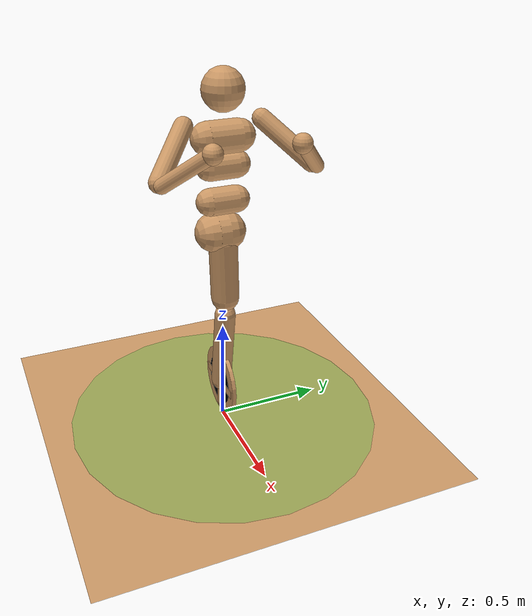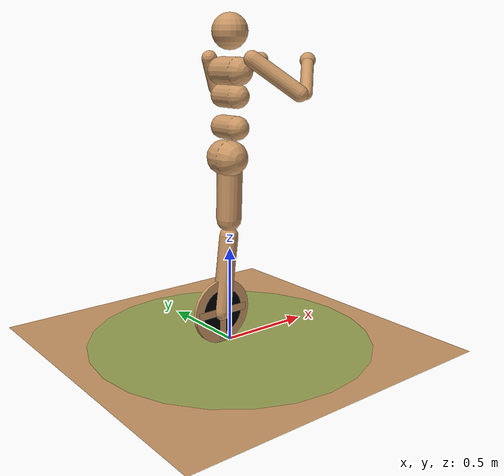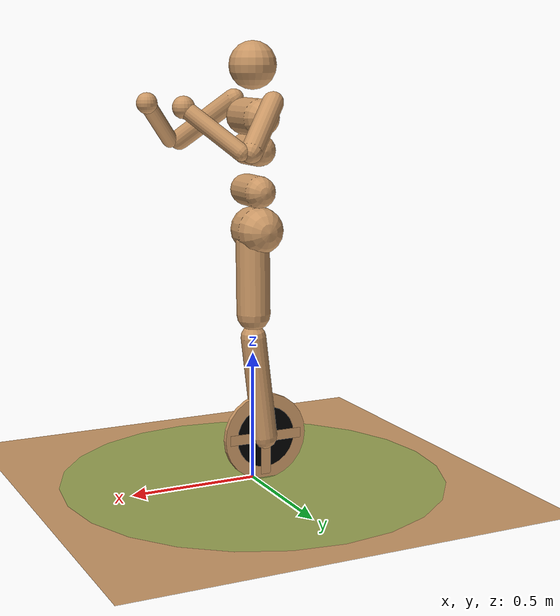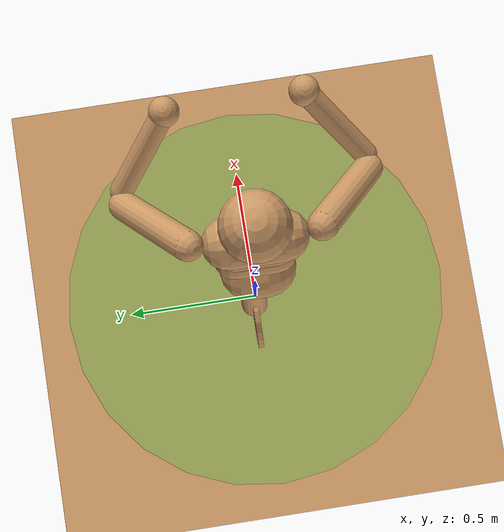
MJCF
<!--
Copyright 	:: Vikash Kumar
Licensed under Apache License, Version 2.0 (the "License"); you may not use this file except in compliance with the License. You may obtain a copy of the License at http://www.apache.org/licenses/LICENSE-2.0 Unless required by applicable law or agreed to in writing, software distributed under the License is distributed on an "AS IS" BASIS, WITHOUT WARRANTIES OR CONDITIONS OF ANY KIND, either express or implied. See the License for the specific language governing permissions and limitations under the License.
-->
<mujoco model='unicycle-v1.5'>

	<compiler inertiafromgeom='true' angle='degree' coordinate='local'/>
	<default>
		<joint limited='true' damping='1' armature='0' />
		<geom contype='1' condim='1' conaffinity='1' friction='.7 .01 .002' rgba='0.8 0.6 .4 1' margin='0.02' material="geom"/>
		<motor ctrlrange='-.3 .3'  ctrllimited='true'/>
	</default>

	<option timestep='0.002'/>

 	<visual>
        <map fogstart="3" fogend="5" force="0.1" znear="0.5"/>
        <quality shadowsize="2048" offsamples="8"/>
        <global offwidth="800" offheight="800"/>
    </visual>

    <asset>
        <texture name="skybox" type="skybox" builtin="gradient" rgb1=".08 .09 .10" rgb2="0 0 0"
               width="800" height="800" mark="random" markrgb=".8 .8 .8"/>
        <texture name="texgeom" type="cube" builtin="flat" mark="cross" width="127" height="1278"
            rgb1="0.8 0.6 0.4" rgb2="0.8 0.6 0.4" markrgb="1 1 1" random="0.01"/>
        <texture name="texplane" type="2d" builtin="checker" rgb1=".2 .3 .4" rgb2=".1 0.15 0.2"
            width="512" height="512"/>

        <material name='MatPlane' reflectance='0.3' texture="texplane" texrepeat="1 1" texuniform="true"/>
        <material name='geom' texture="texgeom" texuniform="true"/>
    </asset>

    <worldbody>
        <geom name='floor' pos='0 0 0' size='15 15 .125' type='plane' material="MatPlane" condim='3'/>

        <light mode='targetbodycom' target='torso' directional='false' diffuse='.8 .8 .8' specular='0.3 0.3 0.3' pos='0 0 4.0' dir='0 0 -1'/>

		<camera name='targeting' pos='1 1 2' mode='targetbodycom' target='torso'/>

        <site name='target' pos='0 0 0' size='.75 .001' type='cylinder' rgba='0.2 0.8 0.2 .3' />

		<body name='torso' pos='0 0 1.4'>
			<joint name='root' type='free' pos='0 0 0' limited='false' damping='0' armature='0'/>
			<geom name='torso1' type='capsule' fromto='0 -.07 0 0 .07 0'  size='0.07' />
			<geom name='head' type='sphere' pos='0 0 .19' size='.09' />
			<geom name='uwaist' type='capsule' fromto='0 -.06 -.12 0 .06 -.12'  size='0.06' />
			<body name='pelvis' pos='0 0 -0.425' quat='1.000 0 -0.002 0'>
				<joint name='abdomen_z' type='hinge' pos='0 0 0.22' axis='0 0 1' range='-45 45' damping='4' stiffness='10' armature='0.0069' />
				<joint name='abdomen_x' type='hinge' pos='0 0 0.22' axis='1 0 0' range='-20 20' damping='4' stiffness='5' armature='0.0153' />
				<joint name='abdomen_y' type='hinge' pos='0 0 0.22' axis='0 1 0' range='-60 30' damping='4' stiffness='5' armature='0.0077' />
				<geom name='lwaist' type='capsule' fromto='0 -.06 0.15 0 .06 0.15'  size='0.06' />
				<geom name='butt' type='capsule' fromto='-.02 -.03 0 -.02 .02 0'  size='0.09' />
				<body name='thigh' pos='0 0 -0.04' >
					<joint name='hip2' type='hinge' pos='0 0 0' axis='0 0 1' range='-60 35'  stiffness='10' armature='0.02' damping='4'/>
					<joint name='hip3' type='hinge' pos='0 0 0' axis='0 1 0' range='-110 10' stiffness='20' armature='0.0080' damping='4'/>
					<geom name='thigh1' type='capsule' fromto='0 0 0 0 0.01 -.28'  size='0.065' />
					<body name='shin' pos='0 0.01 -0.37' >
						<joint name='knee' type='hinge' pos='0 0 .05' axis='0 -1 0' range='-160 -2' armature='0.0060' />
						<geom name='shin1' type='capsule' fromto='0 0 0 -.05 0 -.4'   size='0.049' />
						<joint name='yaw' type='hinge' pos='0 0 -.162' axis='0 0 1' range='-50 50' stiffness='1'  armature='0.0006' />
						<body name='wheel' pos='-0.05 0 -.4'>
							<joint name='wheel' type='hinge' pos='0 0 0' axis='0 1 0' limited='false' stiffness='0' armature='0' damping='0.1'/>
							<geom name='r_wheel' type='cylinder' fromto='0 -.01 0    0 0.01 0'  size='0.17' condim='6'/>
							<geom name='r_wheel0' type='cylinder' fromto='0 -.011 0    0 0.011 0'  size='0.12' rgba='0 0 0 1' contype='0' conaffinity='0' density='0'/>
							<geom name='r_decoration1' type='box'   size='0.15 0.012 0.02' contype='0' conaffinity='0' density='0'/>
							<geom name='r_decoration2' type='box'   size='0.02 0.012 0.15' contype='0' conaffinity='0' density='0'/>
						</body>
					</body>
				</body>
			</body>
			<body name='right_upper_arm' pos='0 -0.17 0.06' >
				<joint name='right_shoulder1' type='hinge' pos='0 0 0' axis='0 -1 1' range='-90 60' stiffness='1'  armature='0.0051' />
				<joint name='right_shoulder2' type='hinge' pos='0 0 0' axis='2 1 1'  range='-90 60' stiffness='1' armature='0.0068' />
				<geom name='right_uarm1' type='capsule' fromto='0 0 0 .16 -.16 -.16'  size='0.04 0.16' />
				<body name='right_lower_arm' pos='.18 -.18 -.18' >
					<joint name='right_elbow' type='hinge' pos='0 0 0' axis='0 -1 1' range='-90 50'  armature='0.0028' />
					<geom name='right_larm' type='capsule' fromto='0.02 0.02 0.02 .17 .17 .17'  size='0.031' />
					<geom name='right_hand' type='sphere' pos='.17 .17 .17'  size='0.04'/>
				</body>
			</body>
			<body name='left_upper_arm' pos='0 0.17 0.06' >
				<joint name='left_shoulder1' type='hinge' pos='0 0 0' axis='0 1 1' range='-60 90'  stiffness='1' armature='0.0051' />
				<joint name='left_shoulder2' type='hinge' pos='0 0 0' axis='2 -1 1' range='-60 90' stiffness='1' armature='0.0068' />
				<geom name='left_uarm1' type='capsule' fromto='0 0 0 .16 .16 -.16'  size='0.04 0.16' />
				<body name='left_lower_arm' pos='.18 .18 -.18' >
					<joint name='left_elbow' type='hinge' pos='0 0 0' axis='0 -1 -1' range='-90 50'  armature='0.0028' />
					<geom name='left_larm' type='capsule' fromto='0.02 -0.02 0.02 .17 -.17 .17'  size='0.031' />
					<geom name='left_hand' type='sphere' pos='.17 -.17 .17'  size='0.04'/>
				</body>
			</body>
		</body>
	</worldbody>

	<actuator>
		<motor name='a_abdomen_y' 			gear='200' joint='abdomen_y' />
		<motor name='a_abdomen_z' 			gear='200' joint='abdomen_z' />
		<motor name='a_abdomen_x' 			gear='200' joint='abdomen_x' />
		<motor name='a_right_hip2' 			gear='200' joint='hip2' />
		<motor name='a_right_hip3' 			gear='400' joint='hip3' />
		<motor name='a_right_knee' 			gear='400' joint='knee' />
		<motor name='a_right_ankle_x' 		gear='100' joint='yaw' />
		<motor name='a_right_ankle_y' 		gear='100' joint='wheel' />
		<motor name='a_right_shoulder1' 	gear='100' joint='right_shoulder1' />
		<motor name='a_right_shoulder2' 	gear='100' joint='right_shoulder2' />
		<motor name='a_right_elbow' 		gear='100' joint='right_elbow' />
		<motor name='a_left_shoulder1' 		gear='100' joint='left_shoulder1' />
		<motor name='a_left_shoulder2' 		gear='100' joint='left_shoulder2' />
		<motor name='a_left_elbow' 			gear='100' joint='left_elbow' />
	</actuator>

</mujoco>
